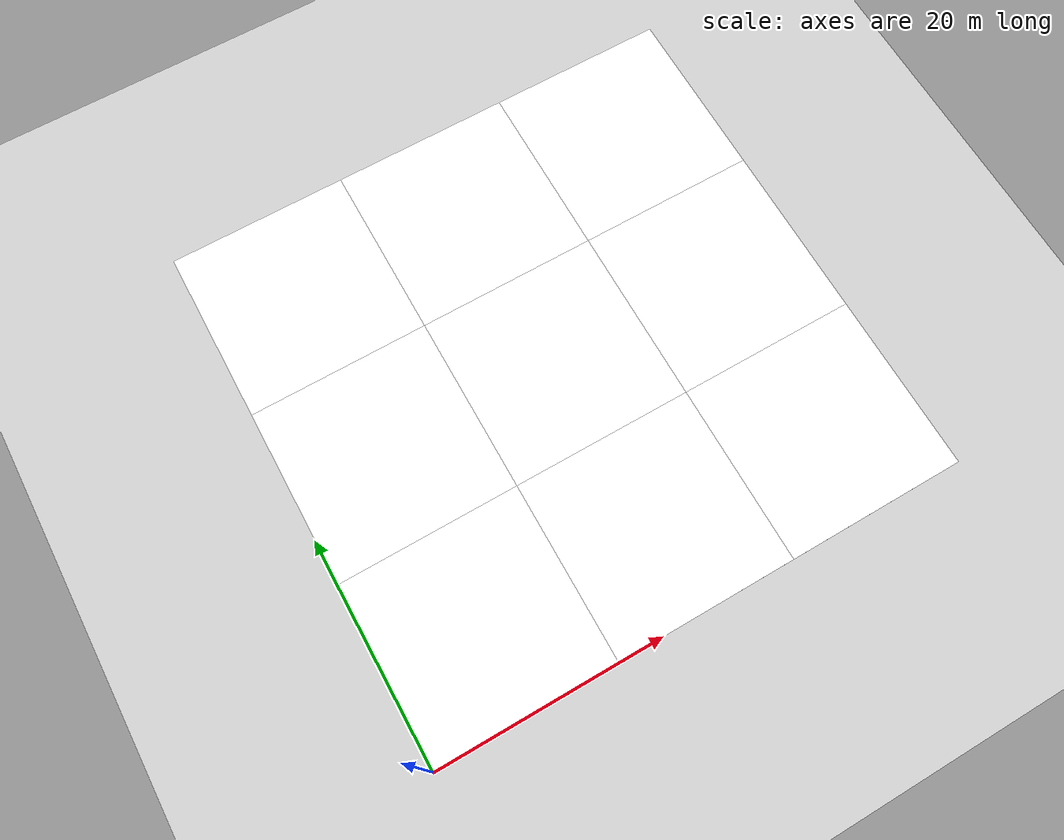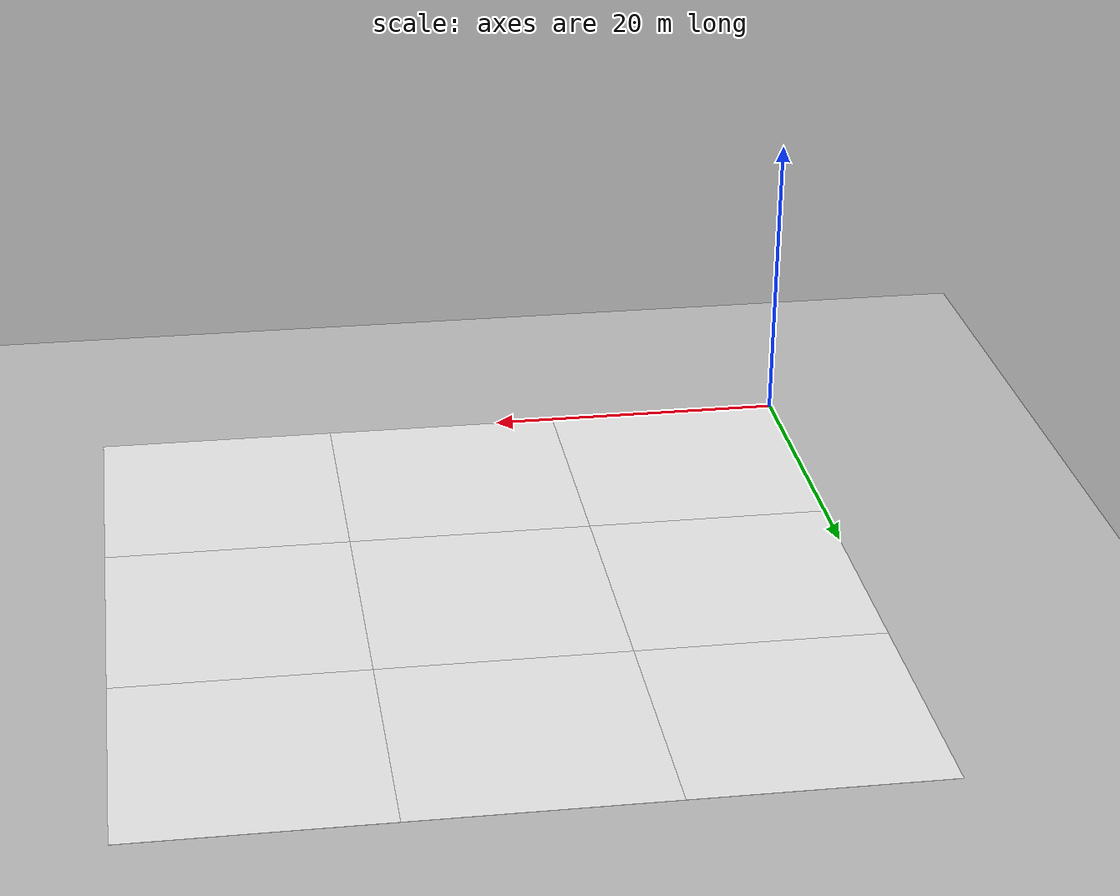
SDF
<sdf version="1.10">
 <world name="default">
  <physics type="ode">
   <max_step_size>0.0040000000000000001</max_step_size>
   <real_time_factor>1</real_time_factor>
   <real_time_update_rate>250</real_time_update_rate>
  </physics>
  <plugin name="gz::sim::systems::Physics" filename="gz-sim-physics-system"/>
  <plugin name="gz::sim::systems::UserCommands" filename="gz-sim-user-commands-system"/>
  <plugin name="gz::sim::systems::SceneBroadcaster" filename="gz-sim-scene-broadcaster-system"/>
  <plugin name="gz::sim::systems::Contact" filename="gz-sim-contact-system"/>
  <plugin name="gz::sim::systems::Imu" filename="gz-sim-imu-system"/>
  <plugin name="gz::sim::systems::AirPressure" filename="gz-sim-air-pressure-system"/>
  <plugin name="gz::sim::systems::ApplyLinkWrench" filename="gz-sim-apply-link-wrench-system"/>
  <plugin name="gz::sim::systems::NavSat" filename="gz-sim-navsat-system"/>
  <plugin name="gz::sim::systems::Sensors" filename="gz-sim-sensors-system">
   <render_engine>ogre2</render_engine>
  </plugin>
  <gravity>0 0 -9.8000000000000007</gravity>
  <magnetic_field>6.0000000000000002e-06 2.3e-05 -4.1999999999999998e-05</magnetic_field>
  <atmosphere type="adiabatic"/>
  <scene>
   <grid>false</grid>
   <ambient>0.400000006 0.400000006 0.400000006 1</ambient>
   <background>0.699999988 0.699999988 0.699999988 1</background>
   <shadows>true</shadows>
  </scene>
  <spherical_coordinates>
   <surface_model>EARTH_WGS84</surface_model>
   <world_frame_orientation>ENU</world_frame_orientation>
   <latitude_deg>47.397971057728974</latitude_deg>
   <longitude_deg>8.5461637398001464</longitude_deg>
   <elevation>0</elevation>
   <heading_deg>0</heading_deg>
  </spherical_coordinates>
  <model name="ground_plane">
   <static>true</static>
   <link name="link">
    <collision name="collision">
     <geometry><plane><normal>0 0 1</normal><size>1 1</size></plane></geometry>
    </collision>
    <visual name="visual">
     <geometry><plane><normal>0 0 1</normal><size>100 100</size></plane></geometry>
     <material>
      <ambient>0.800000012 0.800000012 0.800000012 1</ambient>
      <diffuse>0.800000012 0.800000012 0.800000012 1</diffuse>
      <specular>0.800000012 0.800000012 0.800000012 1</specular>
     </material>
    </visual>
    <inertial>
     <mass>1</mass>
     <inertia><ixx>1</ixx><ixy>0</ixy><ixz>0</ixz><iyy>1</iyy><iyz>0</iyz><izz>1</izz></inertia>
    </inertial>
   </link>
   <pose>0 0 -0.01 0 0 0</pose>
  </model>
  <model name="grasspatch">
   <static>true</static>
   <link name="link">
    <collision name="collision">
     <geometry><plane><normal>0 0 1</normal><size>16 16</size></plane></geometry>
     <surface><friction><ode><mu>0.5</mu><mu2>0.5</mu2></ode></friction></surface>
    </collision>
    <visual name="visual_s10">
     <cast_shadows>false</cast_shadows>
     <geometry><plane><normal>0 0 1</normal><size>16 16</size></plane></geometry>
     <material>
      <diffuse>1 1 1 1</diffuse>
      <specular>1 1 1 1</specular>
      <pbr>
       <metal>
        <albedo_map>materials/textures/grass_dry.png</albedo_map>
        <normal_map>materials/textures/grass_dry.png</normal_map>
       </metal>
      </pbr>
     </material>
    </visual>
    <inertial>
     <mass>1</mass>
     <inertia><ixx>1</ixx><ixy>0</ixy><ixz>0</ixz><iyy>1</iyy><iyz>0</iyz><izz>1</izz></inertia>
    </inertial>
   </link>
   <pose>8 8 0 0 0 0</pose>
  </model>
  <model name="grasspatch_0">
   <static>true</static>
   <link name="link">
    <collision name="collision">
     <geometry><plane><normal>0 0 1</normal><size>16 16</size></plane></geometry>
     <surface><friction><ode><mu>0.5</mu><mu2>0.5</mu2></ode></friction></surface>
    </collision>
    <visual name="visual_s10">
     <cast_shadows>false</cast_shadows>
     <geometry><plane><normal>0 0 1</normal><size>16 16</size></plane></geometry>
     <material>
      <diffuse>1 1 1 1</diffuse>
      <specular>1 1 1 1</specular>
      <pbr>
       <metal>
        <albedo_map>materials/textures/grass_dry.png</albedo_map>
        <normal_map>materials/textures/grass_dry.png</normal_map>
       </metal>
      </pbr>
     </material>
    </visual>
    <inertial>
     <mass>1</mass>
     <inertia><ixx>1</ixx><ixy>0</ixy><ixz>0</ixz><iyy>1</iyy><iyz>0</iyz><izz>1</izz></inertia>
    </inertial>
   </link>
   <pose>24 8 0 0 0 0</pose>
  </model>
  <model name="grasspatch_1">
   <static>true</static>
   <link name="link">
    <collision name="collision">
     <geometry><plane><normal>0 0 1</normal><size>16 16</size></plane></geometry>
     <surface><friction><ode><mu>0.5</mu><mu2>0.5</mu2></ode></friction></surface>
    </collision>
    <visual name="visual_s10">
     <cast_shadows>false</cast_shadows>
     <geometry><plane><normal>0 0 1</normal><size>16 16</size></plane></geometry>
     <material>
      <diffuse>1 1 1 1</diffuse>
      <specular>1 1 1 1</specular>
      <pbr>
       <metal>
        <albedo_map>materials/textures/grass_dry.png</albedo_map>
        <normal_map>materials/textures/grass_dry.png</normal_map>
       </metal>
      </pbr>
     </material>
    </visual>
    <inertial>
     <mass>1</mass>
     <inertia><ixx>1</ixx><ixy>0</ixy><ixz>0</ixz><iyy>1</iyy><iyz>0</iyz><izz>1</izz></inertia>
    </inertial>
   </link>
   <pose>40 8 0 0 0 0</pose>
  </model>
  <model name="grasspatch_2">
   <static>true</static>
   <link name="link">
    <collision name="collision">
     <geometry><plane><normal>0 0 1</normal><size>16 16</size></plane></geometry>
     <surface><friction><ode><mu>0.5</mu><mu2>0.5</mu2></ode></friction></surface>
    </collision>
    <visual name="visual_s10">
     <cast_shadows>false</cast_shadows>
     <geometry><plane><normal>0 0 1</normal><size>16 16</size></plane></geometry>
     <material>
      <diffuse>1 1 1 1</diffuse>
      <specular>1 1 1 1</specular>
      <pbr>
       <metal>
        <albedo_map>materials/textures/grass_dry.png</albedo_map>
        <normal_map>materials/textures/grass_dry.png</normal_map>
       </metal>
      </pbr>
     </material>
    </visual>
    <inertial>
     <mass>1</mass>
     <inertia><ixx>1</ixx><ixy>0</ixy><ixz>0</ixz><iyy>1</iyy><iyz>0</iyz><izz>1</izz></inertia>
    </inertial>
   </link>
   <pose>8 24 0 0 0 0</pose>
  </model>
  <model name="grasspatch_3">
   <static>true</static>
   <link name="link">
    <collision name="collision">
     <geometry><plane><normal>0 0 1</normal><size>16 16</size></plane></geometry>
     <surface><friction><ode><mu>0.5</mu><mu2>0.5</mu2></ode></friction></surface>
    </collision>
    <visual name="visual_s10">
     <cast_shadows>false</cast_shadows>
     <geometry><plane><normal>0 0 1</normal><size>16 16</size></plane></geometry>
     <material>
      <diffuse>1 1 1 1</diffuse>
      <specular>1 1 1 1</specular>
      <pbr>
       <metal>
        <albedo_map>materials/textures/grass_dry.png</albedo_map>
        <normal_map>materials/textures/grass_dry.png</normal_map>
       </metal>
      </pbr>
     </material>
    </visual>
    <inertial>
     <mass>1</mass>
     <inertia><ixx>1</ixx><ixy>0</ixy><ixz>0</ixz><iyy>1</iyy><iyz>0</iyz><izz>1</izz></inertia>
    </inertial>
   </link>
   <pose>24 24 0 0 0 0</pose>
  </model>
  <model name="grasspatch_4">
   <static>true</static>
   <link name="link">
    <collision name="collision">
     <geometry><plane><normal>0 0 1</normal><size>16 16</size></plane></geometry>
     <surface><friction><ode><mu>0.5</mu><mu2>0.5</mu2></ode></friction></surface>
    </collision>
    <visual name="visual_s10">
     <cast_shadows>false</cast_shadows>
     <geometry><plane><normal>0 0 1</normal><size>16 16</size></plane></geometry>
     <material>
      <diffuse>1 1 1 1</diffuse>
      <specular>1 1 1 1</specular>
      <pbr>
       <metal>
        <albedo_map>materials/textures/grass_dry.png</albedo_map>
        <normal_map>materials/textures/grass_dry.png</normal_map>
       </metal>
      </pbr>
     </material>
    </visual>
    <inertial>
     <mass>1</mass>
     <inertia><ixx>1</ixx><ixy>0</ixy><ixz>0</ixz><iyy>1</iyy><iyz>0</iyz><izz>1</izz></inertia>
    </inertial>
   </link>
   <pose>40 24 0 0 0 0</pose>
  </model>
  <model name="grasspatch_5">
   <static>true</static>
   <link name="link">
    <collision name="collision">
     <geometry><plane><normal>0 0 1</normal><size>16 16</size></plane></geometry>
     <surface><friction><ode><mu>0.5</mu><mu2>0.5</mu2></ode></friction></surface>
    </collision>
    <visual name="visual_s10">
     <cast_shadows>false</cast_shadows>
     <geometry><plane><normal>0 0 1</normal><size>16 16</size></plane></geometry>
     <material>
      <diffuse>1 1 1 1</diffuse>
      <specular>1 1 1 1</specular>
      <pbr>
       <metal>
        <albedo_map>materials/textures/grass_dry.png</albedo_map>
        <normal_map>materials/textures/grass_dry.png</normal_map>
       </metal>
      </pbr>
     </material>
    </visual>
    <inertial>
     <mass>1</mass>
     <inertia><ixx>1</ixx><ixy>0</ixy><ixz>0</ixz><iyy>1</iyy><iyz>0</iyz><izz>1</izz></inertia>
    </inertial>
   </link>
   <pose>8 40 0 0 0 0</pose>
  </model>
  <model name="grasspatch_6">
   <static>true</static>
   <link name="link">
    <collision name="collision">
     <geometry><plane><normal>0 0 1</normal><size>16 16</size></plane></geometry>
     <surface><friction><ode><mu>0.5</mu><mu2>0.5</mu2></ode></friction></surface>
    </collision>
    <visual name="visual_s10">
     <cast_shadows>false</cast_shadows>
     <geometry><plane><normal>0 0 1</normal><size>16 16</size></plane></geometry>
     <material>
      <diffuse>1 1 1 1</diffuse>
      <specular>1 1 1 1</specular>
      <pbr>
       <metal>
        <albedo_map>materials/textures/grass_dry.png</albedo_map>
        <normal_map>materials/textures/grass_dry.png</normal_map>
       </metal>
      </pbr>
     </material>
    </visual>
    <inertial>
     <mass>1</mass>
     <inertia><ixx>1</ixx><ixy>0</ixy><ixz>0</ixz><iyy>1</iyy><iyz>0</iyz><izz>1</izz></inertia>
    </inertial>
   </link>
   <pose>24 40 0 0 0 0</pose>
  </model>
  <model name="grasspatch_7">
   <static>true</static>
   <link name="link">
    <collision name="collision">
     <geometry><plane><normal>0 0 1</normal><size>16 16</size></plane></geometry>
     <surface><friction><ode><mu>0.5</mu><mu2>0.5</mu2></ode></friction></surface>
    </collision>
    <visual name="visual_s10">
     <cast_shadows>false</cast_shadows>
     <geometry><plane><normal>0 0 1</normal><size>16 16</size></plane></geometry>
     <material>
      <diffuse>1 1 1 1</diffuse>
      <specular>1 1 1 1</specular>
      <pbr>
       <metal>
        <albedo_map>materials/textures/grass_dry.png</albedo_map>
        <normal_map>materials/textures/grass_dry.png</normal_map>
       </metal>
      </pbr>
     </material>
    </visual>
    <inertial>
     <mass>1</mass>
     <inertia><ixx>1</ixx><ixy>0</ixy><ixz>0</ixz><iyy>1</iyy><iyz>0</iyz><izz>1</izz></inertia>
    </inertial>
   </link>
   <pose>40 40 0 0 0 0</pose>
  </model>
  <light name="sunUTC" type="directional">
   <pose>0 0 500 0 0 0</pose>
   <intensity>1</intensity>
   <direction>0.001 0.625 -0.78000000000000003</direction>
   <diffuse>0.903999984 0.903999984 0.903999984 1</diffuse>
   <specular>0.270999998 0.270999998 0.270999998 1</specular>
   <attenuation><range>2000</range><linear>0</linear><constant>1</constant><quadratic>0</quadratic></attenuation>
   <spot><inner_angle>0</inner_angle><outer_angle>0</outer_angle><falloff>0</falloff></spot>
  </light>
 </world>
</sdf>
